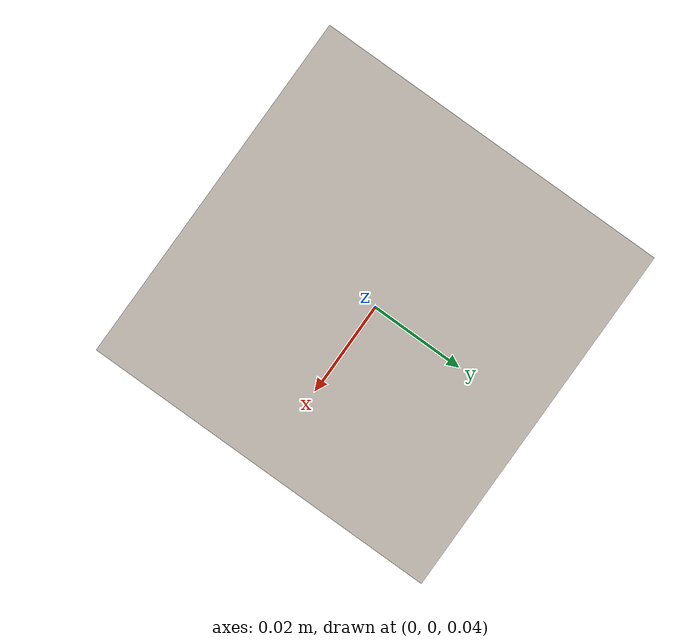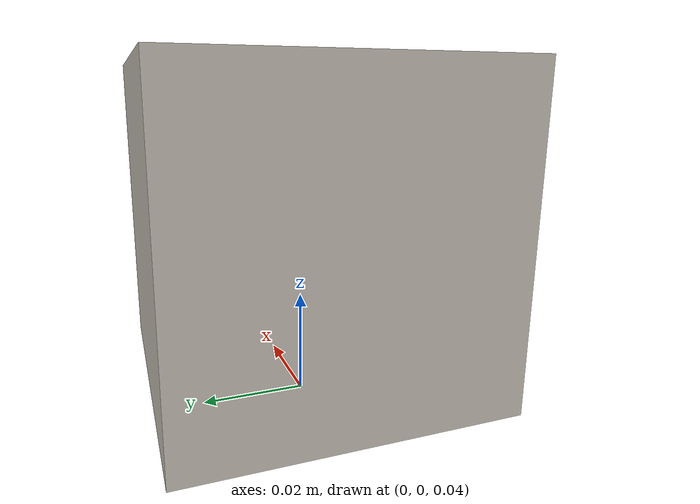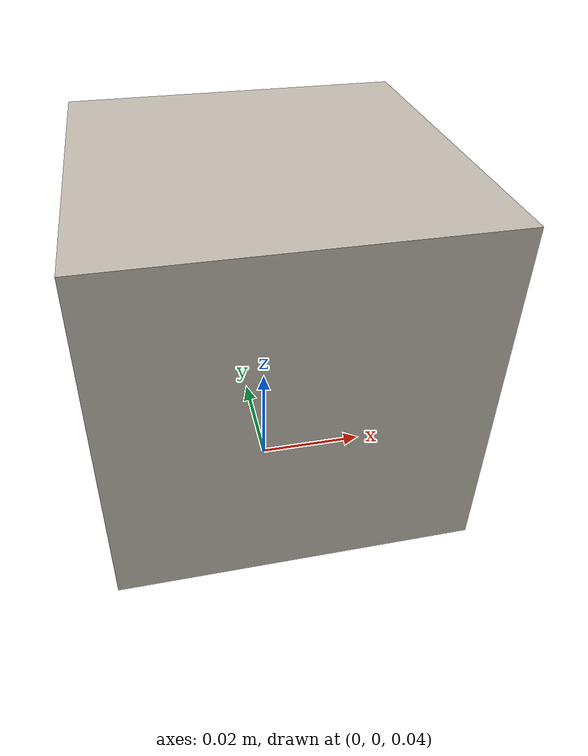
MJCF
<mujoco>
  <asset>
    <texture name="cube" type="cube"
             fileup="/home/sukchul/Codes/MujocoLab/mujocolab/assets/allegro/assets/fileup.png"
             fileback="/home/sukchul/Codes/MujocoLab/mujocolab/assets/allegro/assets/fileback.png"
             filedown="/home/sukchul/Codes/MujocoLab/mujocolab/assets/allegro/assets/filedown.png"
             filefront="/home/sukchul/Codes/MujocoLab/mujocolab/assets/allegro/assets/filefront.png"
             fileleft="/home/sukchul/Codes/MujocoLab/mujocolab/assets/allegro/assets/fileleft.png"
             fileright="/home/sukchul/Codes/MujocoLab/mujocolab/assets/allegro/assets/fileright.png"/>
    <material name="cube" texture="cube"/>
  </asset>
  <worldbody>
    <light pos="0 0 1"/>
    <body name="cube" pos="0. 0.0 0.075" quat="1 0 0 0">
      <freejoint/>
      <geom name="cube" type="box" size=".03 .03 .03" mass=".122" material="cube"/>
    </body>
  </worldbody>

   <sensor>
        <framepos name="cube_position" objtype="body" objname="cube"/>
        <framequat name="cube_orientation" objtype="body" objname="cube"/>
        <framelinvel name="cube_linear_velocity" objtype="body" objname="cube"/>
        <frameangvel name="cube_angular_velocity" objtype="body" objname="cube"/>
    </sensor>
</mujoco>
